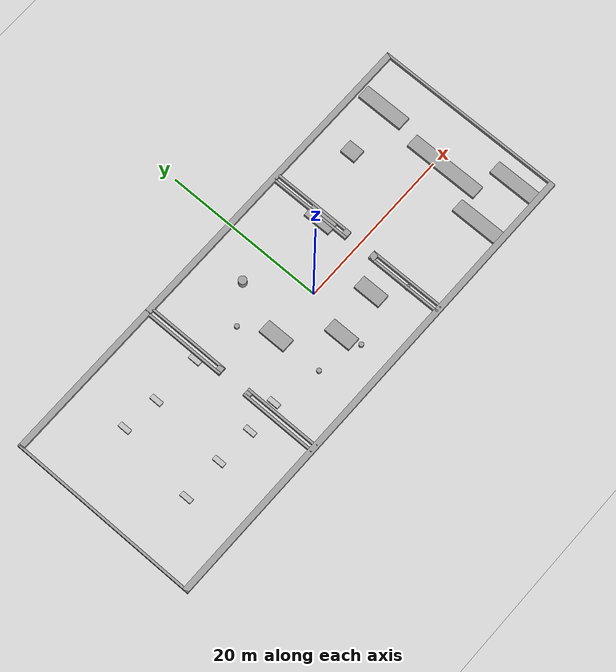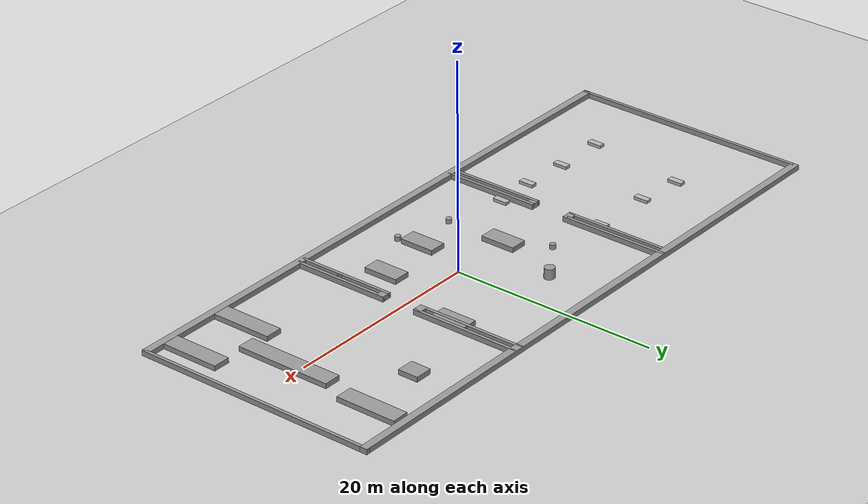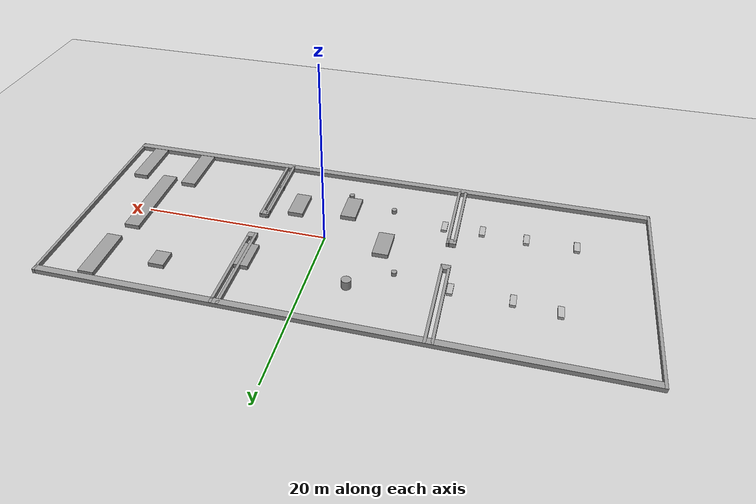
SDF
<sdf version='1.6'>
  <world name='default'>
    <light name='sun' type='directional'>
      <cast_shadows>1</cast_shadows>
      <pose frame=''>0 0 10 0 -0 0</pose>
      <diffuse>0.8 0.8 0.8 1</diffuse>
      <specular>0.2 0.2 0.2 1</specular>
      <attenuation>
        <range>1000</range>
        <constant>0.9</constant>
        <linear>0.01</linear>
        <quadratic>0.001</quadratic>
      </attenuation>
      <direction>-0.5 0.1 -0.9</direction>
    </light>
    <model name='ground_plane'>
      <static>1</static>
      <link name='link'>
        <collision name='collision'>
          <geometry>
            <plane>
              <normal>0 0 1</normal>
              <size>480 480</size>
            </plane>
          </geometry>
          <surface>
            <friction>
              <ode>
                <mu>100</mu>
                <mu2>50</mu2>
              </ode>
              <torsional>
                <ode/>
              </torsional>
            </friction>
            <contact>
              <ode/>
            </contact>
            <bounce/>
          </surface>
          <max_contacts>10</max_contacts>
        </collision>
        <visual name='visual'>
          <cast_shadows>0</cast_shadows>
          <geometry>
            <plane>
              <normal>0 0 1</normal>
              <size>480 480</size>
            </plane>
          </geometry>
          <material>
            <script>
              <uri>file://media/materials/scripts/gazebo.material</uri>
              <name>Gazebo/Grey</name>
            </script>
          </material>
        </visual>
        <self_collide>0</self_collide>
        <enable_wind>0</enable_wind>
        <kinematic>0</kinematic>
      </link>
    </model>
    <gravity>0 0 -9.8</gravity>
    <magnetic_field>6e-06 2.3e-05 -4.2e-05</magnetic_field>
    <atmosphere type='adiabatic'/>
    <physics name='default_physics' default='0' type='ode'>
      <max_step_size>0.001</max_step_size>
      <real_time_factor>1</real_time_factor>
      <real_time_update_rate>1000</real_time_update_rate>
    </physics>
    <scene>
      <ambient>0.4 0.4 0.4 1</ambient>
      <background>0.7 0.7 0.7 1</background>
      <shadows>1</shadows>
    </scene>
    <audio>
      <device>default</device>
    </audio>
    <wind/>
    <spherical_coordinates>
      <surface_model>EARTH_WGS84</surface_model>
      <latitude_deg>0</latitude_deg>
      <longitude_deg>0</longitude_deg>
      <elevation>0</elevation>
      <heading_deg>0</heading_deg>
    </spherical_coordinates>
    <model name='exp_empty_rooms'>
      <pose frame=''>-3.32278 0.346109 0 0 -0 0</pose>
      <link name='Wall_0'>
        <collision name='Wall_0_Collision'>
          <geometry>
            <box>
              <size>24 0.3 0.5</size>
            </box>
          </geometry>
          <pose frame=''>0 0 0.25 0 -0 0</pose>
          <max_contacts>10</max_contacts>
          <surface>
            <contact>
              <ode/>
            </contact>
            <bounce/>
            <friction>
              <torsional>
                <ode/>
              </torsional>
              <ode/>
            </friction>
          </surface>
        </collision>
        <visual name='Wall_0_Visual'>
          <pose frame=''>0 0 0.25 0 -0 0</pose>
          <geometry>
            <box>
              <size>24 0.3 0.5</size>
            </box>
          </geometry>
          <material>
            <script>
              <uri>file://media/materials/scripts/gazebo.material</uri>
              <name>Gazebo/Grey</name>
            </script>
            <ambient>1 1 1 1</ambient>
          </material>
          <meta>
            <layer>0</layer>
          </meta>
        </visual>
        <pose frame=''>-29.85 0 0 0 -0 -1.5708</pose>
        <self_collide>0</self_collide>
        <enable_wind>0</enable_wind>
        <kinematic>0</kinematic>
      </link>
      <link name='Wall_1'>
        <collision name='Wall_1_Collision'>
          <geometry>
            <box>
              <size>60 0.72 0.5</size>
            </box>
          </geometry>
          <pose frame=''>0 0 0.25 0 -0 0</pose>
          <max_contacts>10</max_contacts>
          <surface>
            <contact>
              <ode/>
            </contact>
            <bounce/>
            <friction>
              <torsional>
                <ode/>
              </torsional>
              <ode/>
            </friction>
          </surface>
        </collision>
        <visual name='Wall_1_Visual'>
          <pose frame=''>0 0 0.25 0 -0 0</pose>
          <geometry>
            <box>
              <size>60 0.72 0.5</size>
            </box>
          </geometry>
          <material>
            <script>
              <uri>file://media/materials/scripts/gazebo.material</uri>
              <name>Gazebo/Grey</name>
            </script>
            <ambient>1 1 1 1</ambient>
          </material>
          <meta>
            <layer>0</layer>
          </meta>
        </visual>
        <pose frame=''>0 -11.64 0 0 -0 0</pose>
        <self_collide>0</self_collide>
        <enable_wind>0</enable_wind>
        <kinematic>0</kinematic>
      </link>
      <link name='Wall_10'>
        <collision name='Wall_10_Collision'>
          <geometry>
            <box>
              <size>10.8 0.3 0.5</size>
            </box>
          </geometry>
          <pose frame=''>0 0 0.25 0 -0 0</pose>
          <max_contacts>10</max_contacts>
          <surface>
            <contact>
              <ode/>
            </contact>
            <bounce/>
            <friction>
              <torsional>
                <ode/>
              </torsional>
              <ode/>
            </friction>
          </surface>
        </collision>
        <visual name='Wall_10_Visual'>
          <pose frame=''>0 0 0.25 0 -0 0</pose>
          <geometry>
            <box>
              <size>10.8 0.3 0.5</size>
            </box>
          </geometry>
          <material>
            <script>
              <uri>file://media/materials/scripts/gazebo.material</uri>
              <name>Gazebo/Grey</name>
            </script>
            <ambient>1 1 1 1</ambient>
          </material>
          <meta>
            <layer>0</layer>
          </meta>
        </visual>
        <pose frame=''>-10.11 6.6 0 0 -0 -1.5708</pose>
        <self_collide>0</self_collide>
        <enable_wind>0</enable_wind>
        <kinematic>0</kinematic>
      </link>
      <link name='Wall_11'>
        <collision name='Wall_11_Collision'>
          <geometry>
            <box>
              <size>1 0.72 0.5</size>
            </box>
          </geometry>
          <pose frame=''>0 0 0.25 0 -0 0</pose>
          <max_contacts>10</max_contacts>
          <surface>
            <contact>
              <ode/>
            </contact>
            <bounce/>
            <friction>
              <torsional>
                <ode/>
              </torsional>
              <ode/>
            </friction>
          </surface>
        </collision>
        <visual name='Wall_11_Visual'>
          <pose frame=''>0 0 0.25 0 -0 0</pose>
          <geometry>
            <box>
              <size>1 0.72 0.5</size>
            </box>
          </geometry>
          <material>
            <script>
              <uri>file://media/materials/scripts/gazebo.material</uri>
              <name>Gazebo/Grey</name>
            </script>
            <ambient>1 1 1 1</ambient>
          </material>
          <meta>
            <layer>0</layer>
          </meta>
        </visual>
        <pose frame=''>-9.76 1.56 0 0 -0 0</pose>
        <self_collide>0</self_collide>
        <enable_wind>0</enable_wind>
        <kinematic>0</kinematic>
      </link>
      <link name='Wall_12'>
        <collision name='Wall_12_Collision'>
          <geometry>
            <box>
              <size>10.8 0.3 0.5</size>
            </box>
          </geometry>
          <pose frame=''>0 0 0.25 0 -0 0</pose>
          <max_contacts>10</max_contacts>
          <surface>
            <contact>
              <ode/>
            </contact>
            <bounce/>
            <friction>
              <torsional>
                <ode/>
              </torsional>
              <ode/>
            </friction>
          </surface>
        </collision>
        <visual name='Wall_12_Visual'>
          <pose frame=''>0 0 0.25 0 -0 0</pose>
          <geometry>
            <box>
              <size>10.8 0.3 0.5</size>
            </box>
          </geometry>
          <material>
            <script>
              <uri>file://media/materials/scripts/gazebo.material</uri>
              <name>Gazebo/Grey</name>
            </script>
            <ambient>1 1 1 1</ambient>
          </material>
          <meta>
            <layer>0</layer>
          </meta>
        </visual>
        <pose frame=''>-9.41 6.6 0 0 -0 1.5708</pose>
        <self_collide>0</self_collide>
        <enable_wind>0</enable_wind>
        <kinematic>0</kinematic>
      </link>
      <link name='Wall_16'>
        <collision name='Wall_16_Collision'>
          <geometry>
            <box>
              <size>1 0.72 0.5</size>
            </box>
          </geometry>
          <pose frame=''>0 0 0.25 0 -0 0</pose>
          <max_contacts>10</max_contacts>
          <surface>
            <contact>
              <ode/>
            </contact>
            <bounce/>
            <friction>
              <torsional>
                <ode/>
              </torsional>
              <ode/>
            </friction>
          </surface>
        </collision>
        <visual name='Wall_16_Visual'>
          <pose frame=''>0 0 0.25 0 -0 0</pose>
          <geometry>
            <box>
              <size>1 0.72 0.5</size>
            </box>
          </geometry>
          <material>
            <script>
              <uri>file://media/materials/scripts/gazebo.material</uri>
              <name>Gazebo/Grey</name>
            </script>
            <ambient>1 1 1 1</ambient>
          </material>
          <meta>
            <layer>0</layer>
          </meta>
        </visual>
        <pose frame=''>-9.76 -2.52 0 0 -0 0</pose>
        <self_collide>0</self_collide>
        <enable_wind>0</enable_wind>
        <kinematic>0</kinematic>
      </link>
      <link name='Wall_17'>
        <collision name='Wall_17_Collision'>
          <geometry>
            <box>
              <size>9.6 0.3 0.5</size>
            </box>
          </geometry>
          <pose frame=''>0 0 0.25 0 -0 0</pose>
          <max_contacts>10</max_contacts>
          <surface>
            <contact>
              <ode/>
            </contact>
            <bounce/>
            <friction>
              <torsional>
                <ode/>
              </torsional>
              <ode/>
            </friction>
          </surface>
        </collision>
        <visual name='Wall_17_Visual'>
          <pose frame=''>0 0 0.25 0 -0 0</pose>
          <geometry>
            <box>
              <size>9.6 0.3 0.5</size>
            </box>
          </geometry>
          <material>
            <script>
              <uri>file://media/materials/scripts/gazebo.material</uri>
              <name>Gazebo/Grey</name>
            </script>
            <ambient>1 1 1 1</ambient>
          </material>
          <meta>
            <layer>0</layer>
          </meta>
        </visual>
        <pose frame=''>-9.41 -6.96 0 0 -0 -1.5708</pose>
        <self_collide>0</self_collide>
        <enable_wind>0</enable_wind>
        <kinematic>0</kinematic>
      </link>
      <link name='Wall_19'>
        <collision name='Wall_19_Collision'>
          <geometry>
            <box>
              <size>9.6 0.3 0.5</size>
            </box>
          </geometry>
          <pose frame=''>0 0 0.25 0 -0 0</pose>
          <max_contacts>10</max_contacts>
          <surface>
            <contact>
              <ode/>
            </contact>
            <bounce/>
            <friction>
              <torsional>
                <ode/>
              </torsional>
              <ode/>
            </friction>
          </surface>
        </collision>
        <visual name='Wall_19_Visual'>
          <pose frame=''>0 0 0.25 0 -0 0</pose>
          <geometry>
            <box>
              <size>9.6 0.3 0.5</size>
            </box>
          </geometry>
          <material>
            <script>
              <uri>file://media/materials/scripts/gazebo.material</uri>
              <name>Gazebo/Grey</name>
            </script>
            <ambient>1 1 1 1</ambient>
          </material>
          <meta>
            <layer>0</layer>
          </meta>
        </visual>
        <pose frame=''>-10.11 -6.96 0 0 -0 -1.5708</pose>
        <self_collide>0</self_collide>
        <enable_wind>0</enable_wind>
        <kinematic>0</kinematic>
      </link>
      <link name='Wall_2'>
        <collision name='Wall_2_Collision'>
          <geometry>
            <box>
              <size>24 0.3 0.5</size>
            </box>
          </geometry>
          <pose frame=''>0 0 0.25 0 -0 0</pose>
          <max_contacts>10</max_contacts>
          <surface>
            <contact>
              <ode/>
            </contact>
            <bounce/>
            <friction>
              <torsional>
                <ode/>
              </torsional>
              <ode/>
            </friction>
          </surface>
        </collision>
        <visual name='Wall_2_Visual'>
          <pose frame=''>0 0 0.25 0 -0 0</pose>
          <geometry>
            <box>
              <size>24 0.3 0.5</size>
            </box>
          </geometry>
          <material>
            <script>
              <uri>file://media/materials/scripts/gazebo.material</uri>
              <name>Gazebo/Grey</name>
            </script>
            <ambient>1 1 1 1</ambient>
          </material>
          <meta>
            <layer>0</layer>
          </meta>
        </visual>
        <pose frame=''>29.85 0 0 0 -0 1.5708</pose>
        <self_collide>0</self_collide>
        <enable_wind>0</enable_wind>
        <kinematic>0</kinematic>
      </link>
      <link name='Wall_3'>
        <collision name='Wall_3_Collision'>
          <geometry>
            <box>
              <size>60 0.72 0.5</size>
            </box>
          </geometry>
          <pose frame=''>0 0 0.25 0 -0 0</pose>
          <max_contacts>10</max_contacts>
          <surface>
            <contact>
              <ode/>
            </contact>
            <bounce/>
            <friction>
              <torsional>
                <ode/>
              </torsional>
              <ode/>
            </friction>
          </surface>
        </collision>
        <visual name='Wall_3_Visual'>
          <pose frame=''>0 0 0.25 0 -0 0</pose>
          <geometry>
            <box>
              <size>60 0.72 0.5</size>
            </box>
          </geometry>
          <material>
            <script>
              <uri>file://media/materials/scripts/gazebo.material</uri>
              <name>Gazebo/Grey</name>
            </script>
            <ambient>1 1 1 1</ambient>
          </material>
          <meta>
            <layer>0</layer>
          </meta>
        </visual>
        <pose frame=''>0 11.64 0 0 -0 3.14159</pose>
        <self_collide>0</self_collide>
        <enable_wind>0</enable_wind>
        <kinematic>0</kinematic>
      </link>
      <link name='Wall_38'>
        <collision name='Wall_38_Collision'>
          <geometry>
            <box>
              <size>9.6 0.3 0.5</size>
            </box>
          </geometry>
          <pose frame=''>0 0 0.25 0 -0 0</pose>
          <max_contacts>10</max_contacts>
          <surface>
            <contact>
              <ode/>
            </contact>
            <bounce/>
            <friction>
              <torsional>
                <ode/>
              </torsional>
              <ode/>
            </friction>
          </surface>
        </collision>
        <visual name='Wall_38_Visual'>
          <pose frame=''>0 0 0.25 0 -0 0</pose>
          <geometry>
            <box>
              <size>9.6 0.3 0.5</size>
            </box>
          </geometry>
          <material>
            <script>
              <uri>file://media/materials/scripts/gazebo.material</uri>
              <name>Gazebo/Grey</name>
            </script>
            <ambient>1 1 1 1</ambient>
          </material>
          <meta>
            <layer>0</layer>
          </meta>
        </visual>
        <pose frame=''>10.37 -6.912 0 0 -0 -1.5708</pose>
        <self_collide>0</self_collide>
        <enable_wind>0</enable_wind>
        <kinematic>0</kinematic>
      </link>
      <link name='Wall_43'>
        <collision name='Wall_43_Collision'>
          <geometry>
            <box>
              <size>1 0.72 0.5</size>
            </box>
          </geometry>
          <pose frame=''>0 0 0.25 0 -0 0</pose>
          <max_contacts>10</max_contacts>
          <surface>
            <contact>
              <ode/>
            </contact>
            <bounce/>
            <friction>
              <torsional>
                <ode/>
              </torsional>
              <ode/>
            </friction>
          </surface>
        </collision>
        <visual name='Wall_43_Visual'>
          <pose frame=''>0 0 0.25 0 -0 0</pose>
          <geometry>
            <box>
              <size>1 0.72 0.5</size>
            </box>
          </geometry>
          <material>
            <script>
              <uri>file://media/materials/scripts/gazebo.material</uri>
              <name>Gazebo/Grey</name>
            </script>
            <ambient>1 1 1 1</ambient>
          </material>
          <meta>
            <layer>0</layer>
          </meta>
        </visual>
        <pose frame=''>10.72 -2.472 0 0 -0 0</pose>
        <self_collide>0</self_collide>
        <enable_wind>0</enable_wind>
        <kinematic>0</kinematic>
      </link>
      <link name='Wall_44'>
        <collision name='Wall_44_Collision'>
          <geometry>
            <box>
              <size>9.6 0.3 0.5</size>
            </box>
          </geometry>
          <pose frame=''>0 0 0.25 0 -0 0</pose>
          <max_contacts>10</max_contacts>
          <surface>
            <contact>
              <ode/>
            </contact>
            <bounce/>
            <friction>
              <torsional>
                <ode/>
              </torsional>
              <ode/>
            </friction>
          </surface>
        </collision>
        <visual name='Wall_44_Visual'>
          <pose frame=''>0 0 0.25 0 -0 0</pose>
          <geometry>
            <box>
              <size>9.6 0.3 0.5</size>
            </box>
          </geometry>
          <material>
            <script>
              <uri>file://media/materials/scripts/gazebo.material</uri>
              <name>Gazebo/Grey</name>
            </script>
            <ambient>1 1 1 1</ambient>
          </material>
          <meta>
            <layer>0</layer>
          </meta>
        </visual>
        <pose frame=''>11.07 -6.912 0 0 -0 -1.5708</pose>
        <self_collide>0</self_collide>
        <enable_wind>0</enable_wind>
        <kinematic>0</kinematic>
      </link>
      <link name='Wall_47'>
        <collision name='Wall_47_Collision'>
          <geometry>
            <box>
              <size>10.8 0.3 0.5</size>
            </box>
          </geometry>
          <pose frame=''>0 0 0.25 0 -0 0</pose>
          <max_contacts>10</max_contacts>
          <surface>
            <contact>
              <ode/>
            </contact>
            <bounce/>
            <friction>
              <torsional>
                <ode/>
              </torsional>
              <ode/>
            </friction>
          </surface>
        </collision>
        <visual name='Wall_47_Visual'>
          <pose frame=''>0 0 0.25 0 -0 0</pose>
          <geometry>
            <box>
              <size>10.8 0.3 0.5</size>
            </box>
          </geometry>
          <material>
            <script>
              <uri>file://media/materials/scripts/gazebo.material</uri>
              <name>Gazebo/Grey</name>
            </script>
            <ambient>1 1 1 1</ambient>
          </material>
          <meta>
            <layer>0</layer>
          </meta>
        </visual>
        <pose frame=''>10.35 6.552 0 0 -0 1.5708</pose>
        <self_collide>0</self_collide>
        <enable_wind>0</enable_wind>
        <kinematic>0</kinematic>
      </link>
      <link name='Wall_49'>
        <collision name='Wall_49_Collision'>
          <geometry>
            <box>
              <size>1 0.72 0.5</size>
            </box>
          </geometry>
          <pose frame=''>0 0 0.25 0 -0 0</pose>
          <max_contacts>10</max_contacts>
          <surface>
            <contact>
              <ode/>
            </contact>
            <bounce/>
            <friction>
              <torsional>
                <ode/>
              </torsional>
              <ode/>
            </friction>
          </surface>
        </collision>
        <visual name='Wall_49_Visual'>
          <pose frame=''>0 0 0.25 0 -0 0</pose>
          <geometry>
            <box>
              <size>1 0.72 0.5</size>
            </box>
          </geometry>
          <material>
            <script>
              <uri>file://media/materials/scripts/gazebo.material</uri>
              <name>Gazebo/Grey</name>
            </script>
            <ambient>1 1 1 1</ambient>
          </material>
          <meta>
            <layer>0</layer>
          </meta>
        </visual>
        <pose frame=''>10.7 1.512 0 0 -0 0</pose>
        <self_collide>0</self_collide>
        <enable_wind>0</enable_wind>
        <kinematic>0</kinematic>
      </link>
      <link name='Wall_51'>
        <collision name='Wall_51_Collision'>
          <geometry>
            <box>
              <size>10.8 0.3 0.5</size>
            </box>
          </geometry>
          <pose frame=''>0 0 0.25 0 -0 0</pose>
          <max_contacts>10</max_contacts>
          <surface>
            <contact>
              <ode/>
            </contact>
            <bounce/>
            <friction>
              <torsional>
                <ode/>
              </torsional>
              <ode/>
            </friction>
          </surface>
        </collision>
        <visual name='Wall_51_Visual'>
          <pose frame=''>0 0 0.25 0 -0 0</pose>
          <geometry>
            <box>
              <size>10.8 0.3 0.5</size>
            </box>
          </geometry>
          <material>
            <script>
              <uri>file://media/materials/scripts/gazebo.material</uri>
              <name>Gazebo/Grey</name>
            </script>
            <ambient>1 1 1 1</ambient>
          </material>
          <meta>
            <layer>0</layer>
          </meta>
        </visual>
        <pose frame=''>11.05 6.552 0 0 -0 1.5708</pose>
        <self_collide>0</self_collide>
        <enable_wind>0</enable_wind>
        <kinematic>0</kinematic>
      </link>
      <static>1</static>
    </model>
    <model name='unit_box_clone'>
      <pose frame=''>-6.3061 -0.137011 0.243066 0 -0 0</pose>
      <link name='link'>
        <inertial>
          <mass>1</mass>
          <inertia>
            <ixx>0.166667</ixx>
            <ixy>0</ixy>
            <ixz>0</ixz>
            <iyy>0.166667</iyy>
            <iyz>0</iyz>
            <izz>0.166667</izz>
          </inertia>
        </inertial>
        <collision name='collision'>
          <geometry>
            <box>
              <size>1.66509 3.41848 0.486131</size>
            </box>
          </geometry>
          <max_contacts>10</max_contacts>
          <surface>
            <contact>
              <ode/>
            </contact>
            <bounce/>
            <friction>
              <torsional>
                <ode/>
              </torsional>
              <ode/>
            </friction>
          </surface>
        </collision>
        <visual name='visual'>
          <geometry>
            <box>
              <size>1.66509 3.41848 0.486131</size>
            </box>
          </geometry>
          <material>
            <script>
              <name>Gazebo/Grey</name>
              <uri>file://media/materials/scripts/gazebo.material</uri>
            </script>
          </material>
        </visual>
        <self_collide>0</self_collide>
        <enable_wind>0</enable_wind>
        <kinematic>0</kinematic>
      </link>
    </model>
    <model name='unit_box_clone_clone'>
      <pose frame=''>-1.60181 -5.2957 0.243066 0 -0 0</pose>
      <link name='link'>
        <inertial>
          <mass>1</mass>
          <inertia>
            <ixx>0.166667</ixx>
            <ixy>0</ixy>
            <ixz>0</ixz>
            <iyy>0.166667</iyy>
            <iyz>0</iyz>
            <izz>0.166667</izz>
          </inertia>
        </inertial>
        <collision name='collision'>
          <geometry>
            <box>
              <size>1.66509 3.41848 0.486131</size>
            </box>
          </geometry>
          <max_contacts>10</max_contacts>
          <surface>
            <contact>
              <ode/>
            </contact>
            <bounce/>
            <friction>
              <torsional>
                <ode/>
              </torsional>
              <ode/>
            </friction>
          </surface>
        </collision>
        <visual name='visual'>
          <geometry>
            <box>
              <size>1.66509 3.41848 0.486131</size>
            </box>
          </geometry>
          <material>
            <script>
              <name>Gazebo/Grey</name>
              <uri>file://media/materials/scripts/gazebo.material</uri>
            </script>
          </material>
        </visual>
        <self_collide>0</self_collide>
        <enable_wind>0</enable_wind>
        <kinematic>0</kinematic>
      </link>
    </model>
    <model name='unit_box_clone_clone_1'>
      <pose frame=''>4.15108 -4.52149 0.243066 0 -0 0</pose>
      <link name='link'>
        <inertial>
          <mass>1</mass>
          <inertia>
            <ixx>0.166667</ixx>
            <ixy>0</ixy>
            <ixz>0</ixz>
            <iyy>0.166667</iyy>
            <iyz>0</iyz>
            <izz>0.166667</izz>
          </inertia>
        </inertial>
        <collision name='collision'>
          <geometry>
            <box>
              <size>1.66509 3.41848 0.486131</size>
            </box>
          </geometry>
          <max_contacts>10</max_contacts>
          <surface>
            <contact>
              <ode/>
            </contact>
            <bounce/>
            <friction>
              <torsional>
                <ode/>
              </torsional>
              <ode/>
            </friction>
          </surface>
        </collision>
        <visual name='visual'>
          <geometry>
            <box>
              <size>1.66509 3.41848 0.486131</size>
            </box>
          </geometry>
          <material>
            <script>
              <name>Gazebo/Grey</name>
              <uri>file://media/materials/scripts/gazebo.material</uri>
            </script>
          </material>
        </visual>
        <self_collide>0</self_collide>
        <enable_wind>0</enable_wind>
        <kinematic>0</kinematic>
      </link>
    </model>
    <model name='unit_box_clone_clone_2'>
      <pose frame=''>6.90728 4.9729 0.243066 0 -0 0</pose>
      <link name='link'>
        <inertial>
          <mass>1</mass>
          <inertia>
            <ixx>0.166667</ixx>
            <ixy>0</ixy>
            <ixz>0</ixz>
            <iyy>0.166667</iyy>
            <iyz>0</iyz>
            <izz>0.166667</izz>
          </inertia>
        </inertial>
        <collision name='collision'>
          <geometry>
            <box>
              <size>1.66509 3.41848 0.486131</size>
            </box>
          </geometry>
          <max_contacts>10</max_contacts>
          <surface>
            <contact>
              <ode/>
            </contact>
            <bounce/>
            <friction>
              <torsional>
                <ode/>
              </torsional>
              <ode/>
            </friction>
          </surface>
        </collision>
        <visual name='visual'>
          <geometry>
            <box>
              <size>1.66509 3.41848 0.486131</size>
            </box>
          </geometry>
          <material>
            <script>
              <name>Gazebo/Grey</name>
              <uri>file://media/materials/scripts/gazebo.material</uri>
            </script>
          </material>
        </visual>
        <self_collide>0</self_collide>
        <enable_wind>0</enable_wind>
        <kinematic>0</kinematic>
      </link>
    </model>
    <model name='unit_box_clone_clone_2_clone'>
      <pose frame=''>15.1405 7.61443 0.243066 0 -0 0</pose>
      <link name='link'>
        <inertial>
          <mass>1</mass>
          <inertia>
            <ixx>0.166667</ixx>
            <ixy>0</ixy>
            <ixz>0</ixz>
            <iyy>0.166667</iyy>
            <iyz>0</iyz>
            <izz>0.166667</izz>
          </inertia>
        </inertial>
        <collision name='collision'>
          <geometry>
            <box>
              <size>1.66509 1.97995 0.486131</size>
            </box>
          </geometry>
          <max_contacts>10</max_contacts>
          <surface>
            <contact>
              <ode/>
            </contact>
            <bounce/>
            <friction>
              <torsional>
                <ode/>
              </torsional>
              <ode/>
            </friction>
          </surface>
        </collision>
        <visual name='visual'>
          <geometry>
            <box>
              <size>1.66509 1.97995 0.486131</size>
            </box>
          </geometry>
          <material>
            <script>
              <name>Gazebo/Grey</name>
              <uri>file://media/materials/scripts/gazebo.material</uri>
            </script>
          </material>
        </visual>
        <self_collide>0</self_collide>
        <enable_wind>0</enable_wind>
        <kinematic>0</kinematic>
      </link>
    </model>
    <model name='unit_box_clone_clone_2_clone_clone'>
      <pose frame=''>17.8679 -8.0485 0.243066 0 -0 -3e-06</pose>
      <link name='link'>
        <inertial>
          <mass>1</mass>
          <inertia>
            <ixx>0.166667</ixx>
            <ixy>0</ixy>
            <ixz>0</ixz>
            <iyy>0.166667</iyy>
            <iyz>0</iyz>
            <izz>0.166667</izz>
          </inertia>
        </inertial>
        <collision name='collision'>
          <geometry>
            <box>
              <size>1.66509 5.90213 0.486131</size>
            </box>
          </geometry>
          <max_contacts>10</max_contacts>
          <surface>
            <contact>
              <ode/>
            </contact>
            <bounce/>
            <friction>
              <torsional>
                <ode/>
              </torsional>
              <ode/>
            </friction>
          </surface>
        </collision>
        <visual name='visual'>
          <geometry>
            <box>
              <size>1.66509 5.90213 0.486131</size>
            </box>
          </geometry>
          <material>
            <script>
              <name>Gazebo/Grey</name>
              <uri>file://media/materials/scripts/gazebo.material</uri>
            </script>
          </material>
        </visual>
        <self_collide>0</self_collide>
        <enable_wind>0</enable_wind>
        <kinematic>0</kinematic>
      </link>
    </model>
    <model name='unit_box_clone_clone_2_clone_clone_clone'>
      <pose frame=''>21.3716 8.37197 0.243066 0 0 -3e-06</pose>
      <link name='link'>
        <inertial>
          <mass>1</mass>
          <inertia>
            <ixx>0.166667</ixx>
            <ixy>0</ixy>
            <ixz>0</ixz>
            <iyy>0.166667</iyy>
            <iyz>0</iyz>
            <izz>0.166667</izz>
          </inertia>
        </inertial>
        <collision name='collision'>
          <geometry>
            <box>
              <size>1.66509 5.90213 0.486131</size>
            </box>
          </geometry>
          <max_contacts>10</max_contacts>
          <surface>
            <contact>
              <ode/>
            </contact>
            <bounce/>
            <friction>
              <torsional>
                <ode/>
              </torsional>
              <ode/>
            </friction>
          </surface>
        </collision>
        <visual name='visual'>
          <geometry>
            <box>
              <size>1.66509 5.90213 0.486131</size>
            </box>
          </geometry>
          <material>
            <script>
              <name>Gazebo/Grey</name>
              <uri>file://media/materials/scripts/gazebo.material</uri>
            </script>
          </material>
        </visual>
        <self_collide>0</self_collide>
        <enable_wind>0</enable_wind>
        <kinematic>0</kinematic>
      </link>
    </model>
    <model name='unit_box_clone_clone_2_clone_clone_clone_0'>
      <pose frame=''>23.9706 -8.27405 0.243066 0 0 -3e-06</pose>
      <link name='link'>
        <inertial>
          <mass>1</mass>
          <inertia>
            <ixx>0.166667</ixx>
            <ixy>0</ixy>
            <ixz>0</ixz>
            <iyy>0.166667</iyy>
            <iyz>0</iyz>
            <izz>0.166667</izz>
          </inertia>
        </inertial>
        <collision name='collision'>
          <geometry>
            <box>
              <size>1.66509 5.90213 0.486131</size>
            </box>
          </geometry>
          <max_contacts>10</max_contacts>
          <surface>
            <contact>
              <ode/>
            </contact>
            <bounce/>
            <friction>
              <torsional>
                <ode/>
              </torsional>
              <ode/>
            </friction>
          </surface>
        </collision>
        <visual name='visual'>
          <geometry>
            <box>
              <size>1.66509 5.90213 0.486131</size>
            </box>
          </geometry>
          <material>
            <script>
              <name>Gazebo/Grey</name>
              <uri>file://media/materials/scripts/gazebo.material</uri>
            </script>
          </material>
        </visual>
        <self_collide>0</self_collide>
        <enable_wind>0</enable_wind>
        <kinematic>0</kinematic>
      </link>
    </model>
    <model name='unit_box_clone_clone_2_clone_clone_clone_1'>
      <pose frame=''>20.4514 -1.19933 0.243066 0 0 -3e-06</pose>
      <link name='link'>
        <inertial>
          <mass>1</mass>
          <inertia>
            <ixx>0.166667</ixx>
            <ixy>0</ixy>
            <ixz>0</ixz>
            <iyy>0.166667</iyy>
            <iyz>0</iyz>
            <izz>0.166667</izz>
          </inertia>
        </inertial>
        <collision name='collision'>
          <geometry>
            <box>
              <size>1.66509 9.38059 0.486131</size>
            </box>
          </geometry>
          <max_contacts>10</max_contacts>
          <surface>
            <contact>
              <ode/>
            </contact>
            <bounce/>
            <friction>
              <torsional>
                <ode/>
              </torsional>
              <ode/>
            </friction>
          </surface>
        </collision>
        <visual name='visual'>
          <geometry>
            <box>
              <size>1.66509 9.38059 0.486131</size>
            </box>
          </geometry>
          <material>
            <script>
              <name>Gazebo/Grey</name>
              <uri>file://media/materials/scripts/gazebo.material</uri>
            </script>
          </material>
        </visual>
        <self_collide>0</self_collide>
        <enable_wind>0</enable_wind>
        <kinematic>0</kinematic>
      </link>
    </model>

    <gui fullscreen='0'>
      <camera name='user_camera'>
        <pose frame=''>0.896642 3.88301 15.707 0 1.0618 3.10019</pose>
        <view_controller>orbit</view_controller>
        <projection_type>perspective</projection_type>
      </camera>
    </gui>
    <model name='unit_cylinder'>
      <pose frame=''>-4.08946 6.59976 0.5 0 -0 0</pose>
      <link name='link'>
        <inertial>
          <mass>1</mass>
          <inertia>
            <ixx>0.145833</ixx>
            <ixy>0</ixy>
            <ixz>0</ixz>
            <iyy>0.145833</iyy>
            <iyz>0</iyz>
            <izz>0.125</izz>
          </inertia>
        </inertial>
        <collision name='collision'>
          <geometry>
            <cylinder>
              <radius>0.499999</radius>
              <length>1</length>
            </cylinder>
          </geometry>
          <max_contacts>10</max_contacts>
          <surface>
            <contact>
              <ode/>
            </contact>
            <bounce/>
            <friction>
              <torsional>
                <ode/>
              </torsional>
              <ode/>
            </friction>
          </surface>
        </collision>
        <visual name='visual'>
          <geometry>
            <cylinder>
              <radius>0.499999</radius>
              <length>1</length>
            </cylinder>
          </geometry>
          <material>
            <script>
              <name>Gazebo/Grey</name>
              <uri>file://media/materials/scripts/gazebo.material</uri>
            </script>
          </material>
        </visual>
        <self_collide>0</self_collide>
        <enable_wind>0</enable_wind>
        <kinematic>0</kinematic>
      </link>
    </model>
    <model name='unit_cylinder_clone'>
      <pose frame=''>-6.22348 -6.10858 0.222892 0 -0 0</pose>
      <link name='link'>
        <inertial>
          <mass>1</mass>
          <inertia>
            <ixx>0.145833</ixx>
            <ixy>0</ixy>
            <ixz>0</ixz>
            <iyy>0.145833</iyy>
            <iyz>0</iyz>
            <izz>0.125</izz>
          </inertia>
        </inertial>
        <collision name='collision'>
          <geometry>
            <cylinder>
              <radius>0.278354</radius>
              <length>0.445785</length>
            </cylinder>
          </geometry>
          <max_contacts>10</max_contacts>
          <surface>
            <contact>
              <ode/>
            </contact>
            <bounce/>
            <friction>
              <torsional>
                <ode/>
              </torsional>
              <ode/>
            </friction>
          </surface>
        </collision>
        <visual name='visual'>
          <geometry>
            <cylinder>
              <radius>0.278354</radius>
              <length>0.445785</length>
            </cylinder>
          </geometry>
          <material>
            <script>
              <name>Gazebo/Grey</name>
              <uri>file://media/materials/scripts/gazebo.material</uri>
            </script>
          </material>
        </visual>
        <self_collide>0</self_collide>
        <enable_wind>0</enable_wind>
        <kinematic>0</kinematic>
      </link>
    </model>
    <model name='unit_cylinder_clone_0'>
      <pose frame=''>7.10898 -7.14773 0.22289 2e-06 2e-06 0</pose>
      <link name='link'>
        <inertial>
          <mass>1</mass>
          <inertia>
            <ixx>0.145833</ixx>
            <ixy>0</ixy>
            <ixz>0</ixz>
            <iyy>0.145833</iyy>
            <iyz>0</iyz>
            <izz>0.125</izz>
          </inertia>
        </inertial>
        <collision name='collision'>
          <geometry>
            <cylinder>
              <radius>0.278354</radius>
              <length>0.445785</length>
            </cylinder>
          </geometry>
          <max_contacts>10</max_contacts>
          <surface>
            <contact>
              <ode/>
            </contact>
            <bounce/>
            <friction>
              <torsional>
                <ode/>
              </torsional>
              <ode/>
            </friction>
          </surface>
        </collision>
        <visual name='visual'>
          <geometry>
            <cylinder>
              <radius>0.278354</radius>
              <length>0.445785</length>
            </cylinder>
          </geometry>
          <material>
            <script>
              <name>Gazebo/Grey</name>
              <uri>file://media/materials/scripts/gazebo.material</uri>
            </script>
          </material>
        </visual>
        <self_collide>0</self_collide>
        <enable_wind>0</enable_wind>
        <kinematic>0</kinematic>
      </link>
    </model>
    <model name='unit_cylinder_clone_0_clone'>
      <pose frame=''>-1.05274 -7.59245 0.222885 -2e-06 -2e-06 0</pose>
      <link name='link'>
        <inertial>
          <mass>1</mass>
          <inertia>
            <ixx>0.145833</ixx>
            <ixy>0</ixy>
            <ixz>0</ixz>
            <iyy>0.145833</iyy>
            <iyz>0</iyz>
            <izz>0.125</izz>
          </inertia>
        </inertial>
        <collision name='collision'>
          <geometry>
            <cylinder>
              <radius>0.278354</radius>
              <length>0.445785</length>
            </cylinder>
          </geometry>
          <max_contacts>10</max_contacts>
          <surface>
            <contact>
              <ode/>
            </contact>
            <bounce/>
            <friction>
              <torsional>
                <ode/>
              </torsional>
              <ode/>
            </friction>
          </surface>
        </collision>
        <visual name='visual'>
          <geometry>
            <cylinder>
              <radius>0.278354</radius>
              <length>0.445785</length>
            </cylinder>
          </geometry>
          <material>
            <script>
              <name>Gazebo/Grey</name>
              <uri>file://media/materials/scripts/gazebo.material</uri>
            </script>
          </material>
        </visual>
        <self_collide>0</self_collide>
        <enable_wind>0</enable_wind>
        <kinematic>0</kinematic>
      </link>
    </model>
    <model name='unit_cylinder_clone_1'>
      <pose frame=''>-8.24054 3.76908 0.22289 2e-06 2e-06 0</pose>
      <link name='link'>
        <inertial>
          <mass>1</mass>
          <inertia>
            <ixx>0.145833</ixx>
            <ixy>0</ixy>
            <ixz>0</ixz>
            <iyy>0.145833</iyy>
            <iyz>0</iyz>
            <izz>0.125</izz>
          </inertia>
        </inertial>
        <collision name='collision'>
          <geometry>
            <cylinder>
              <radius>0.278354</radius>
              <length>0.445785</length>
            </cylinder>
          </geometry>
          <max_contacts>10</max_contacts>
          <surface>
            <contact>
              <ode/>
            </contact>
            <bounce/>
            <friction>
              <torsional>
                <ode/>
              </torsional>
              <ode/>
            </friction>
          </surface>
        </collision>
        <visual name='visual'>
          <geometry>
            <cylinder>
              <radius>0.278354</radius>
              <length>0.445785</length>
            </cylinder>
          </geometry>
          <material>
            <script>
              <name>Gazebo/Grey</name>
              <uri>file://media/materials/scripts/gazebo.material</uri>
            </script>
          </material>
        </visual>
        <self_collide>0</self_collide>
        <enable_wind>0</enable_wind>
        <kinematic>0</kinematic>
      </link>
    </model>
    <model name='DynamicObstacle'>
      <pose frame=''>-16.0102 -4.98014 0.15 0 -0 0</pose>
      <link name='link'>
        <gravity>1</gravity>
        <inertial>
          <inertia>
            <ixx>0.17</ixx>
            <ixy>0</ixy>
            <ixz>0</ixz>
            <iyy>0.17</iyy>
            <iyz>0</iyz>
            <izz>0.17</izz>
          </inertia>
          <mass>100</mass>
        </inertial>
        <kinematic>0</kinematic>
        <collision name='collision'>
          <max_contacts>0</max_contacts>
          <geometry>
            <box>
              <size>0.6 1.44 0.3</size>
            </box>
          </geometry>
          <surface>
            <friction>
              <ode>
                <mu>0</mu>
                <mu2>0</mu2>
              </ode>
              <torsional>
                <ode/>
              </torsional>
            </friction>
            <bounce>
              <restitution_coefficient>0</restitution_coefficient>
              <threshold>0</threshold>
            </bounce>
            <contact>
              <ode>
                <kp>2e+09</kp>
                <kd>1</kd>
                <max_vel>0.01</max_vel>
                <min_depth>0</min_depth>
              </ode>
            </contact>
          </surface>
        </collision>
        <visual name='visual'>
          <geometry>
            <box>
              <size>0.6 1.44 0.3</size>
            </box>
          </geometry>
        </visual>
        <self_collide>0</self_collide>
        <enable_wind>0</enable_wind>
      </link>
      <plugin name='random' filename='libRandomVelocityPlugin.so'>
        <link>link</link>
        <initial_velocity>0.5 0.0 0</initial_velocity>
        <velocity_factor>0.2</velocity_factor>
        <update_period>5</update_period>
        <min_z>-24</min_z>
        <max_z>0</max_z>
      </plugin>
    </model>
    <model name='DynamicObstacle_clone'>
      <pose frame=''>-19.9914 4.72224 0.15 0 -0 0</pose>
      <link name='link'>
        <gravity>1</gravity>
        <inertial>
          <inertia>
            <ixx>0.17</ixx>
            <ixy>0</ixy>
            <ixz>0</ixz>
            <iyy>0.17</iyy>
            <iyz>0</iyz>
            <izz>0.17</izz>
          </inertia>
          <mass>100</mass>
        </inertial>
        <kinematic>0</kinematic>
        <collision name='collision'>
          <max_contacts>0</max_contacts>
          <geometry>
            <box>
              <size>0.6 1.44 0.3</size>
            </box>
          </geometry>
          <surface>
            <friction>
              <ode>
                <mu>0</mu>
                <mu2>0</mu2>
              </ode>
              <torsional>
                <ode/>
              </torsional>
            </friction>
            <bounce>
              <restitution_coefficient>0</restitution_coefficient>
              <threshold>0</threshold>
            </bounce>
            <contact>
              <ode>
                <kp>2e+09</kp>
                <kd>1</kd>
                <max_vel>0.01</max_vel>
                <min_depth>0</min_depth>
              </ode>
            </contact>
          </surface>
        </collision>
        <visual name='visual'>
          <geometry>
            <box>
              <size>0.6 1.44 0.3</size>
            </box>
          </geometry>
        </visual>
        <self_collide>0</self_collide>
        <enable_wind>0</enable_wind>
      </link>
      <plugin name='random' filename='libRandomVelocityPlugin.so'>
        <link>link</link>
        <initial_velocity>0.5 0.0 0</initial_velocity>
        <velocity_factor>0.2</velocity_factor>
        <update_period>5</update_period>
        <min_z>-24</min_z>
        <max_z>0</max_z>
      </plugin>
    </model>
    <model name='DynamicObstacle_clone_clone'>
      <pose frame=''>-25.7828 -4.74765 0.15 0 -0 0</pose>
      <link name='link'>
        <gravity>1</gravity>
        <inertial>
          <inertia>
            <ixx>0.17</ixx>
            <ixy>0</ixy>
            <ixz>0</ixz>
            <iyy>0.17</iyy>
            <iyz>0</iyz>
            <izz>0.17</izz>
          </inertia>
          <mass>100</mass>
        </inertial>
        <kinematic>0</kinematic>
        <collision name='collision'>
          <max_contacts>0</max_contacts>
          <geometry>
            <box>
              <size>0.6 1.44 0.3</size>
            </box>
          </geometry>
          <surface>
            <friction>
              <ode>
                <mu>0</mu>
                <mu2>0</mu2>
              </ode>
              <torsional>
                <ode/>
              </torsional>
            </friction>
            <bounce>
              <restitution_coefficient>0</restitution_coefficient>
              <threshold>0</threshold>
            </bounce>
            <contact>
              <ode>
                <kp>2e+09</kp>
                <kd>1</kd>
                <max_vel>0.01</max_vel>
                <min_depth>0</min_depth>
              </ode>
            </contact>
          </surface>
        </collision>
        <visual name='visual'>
          <geometry>
            <box>
              <size>0.6 1.44 0.3</size>
            </box>
          </geometry>
        </visual>
        <self_collide>0</self_collide>
        <enable_wind>0</enable_wind>
      </link>
      <plugin name='random' filename='libRandomVelocityPlugin.so'>
        <link>link</link>
        <initial_velocity>0.5 0.0 0</initial_velocity>
        <velocity_factor>0.2</velocity_factor>
        <update_period>5</update_period>
        <min_z>-24</min_z>
        <max_z>0</max_z>
      </plugin>
    </model>
    <model name='DynamicObstacle_clone_clone_clone'>
      <pose frame=''>-24.4536 5.18794 0.15 0 -0 0</pose>
      <link name='link'>
        <gravity>1</gravity>
        <inertial>
          <inertia>
            <ixx>0.17</ixx>
            <ixy>0</ixy>
            <ixz>0</ixz>
            <iyy>0.17</iyy>
            <iyz>0</iyz>
            <izz>0.17</izz>
          </inertia>
          <mass>100</mass>
        </inertial>
        <kinematic>0</kinematic>
        <collision name='collision'>
          <max_contacts>0</max_contacts>
          <geometry>
            <box>
              <size>0.6 1.44 0.3</size>
            </box>
          </geometry>
          <surface>
            <friction>
              <ode>
                <mu>0</mu>
                <mu2>0</mu2>
              </ode>
              <torsional>
                <ode/>
              </torsional>
            </friction>
            <bounce>
              <restitution_coefficient>0</restitution_coefficient>
              <threshold>0</threshold>
            </bounce>
            <contact>
              <ode>
                <kp>2e+09</kp>
                <kd>1</kd>
                <max_vel>0.01</max_vel>
                <min_depth>0</min_depth>
              </ode>
            </contact>
          </surface>
        </collision>
        <visual name='visual'>
          <geometry>
            <box>
              <size>0.6 1.44 0.3</size>
            </box>
          </geometry>
        </visual>
        <self_collide>0</self_collide>
        <enable_wind>0</enable_wind>
      </link>
      <plugin name='random' filename='libRandomVelocityPlugin.so'>
        <link>link</link>
        <initial_velocity>0.5 0.0 0</initial_velocity>
        <velocity_factor>0.2</velocity_factor>
        <update_period>5</update_period>
        <min_z>-24</min_z>
        <max_z>0</max_z>
      </plugin>
    </model>
    <model name='DynamicObstacle_clone_clone_clone_clone'>
      <pose frame=''>-13.9517 4.64376 0.15 0 -0 0</pose>
      <link name='link'>
        <gravity>1</gravity>
        <inertial>
          <inertia>
            <ixx>0.17</ixx>
            <ixy>0</ixy>
            <ixz>0</ixz>
            <iyy>0.17</iyy>
            <iyz>0</iyz>
            <izz>0.17</izz>
          </inertia>
          <mass>100</mass>
        </inertial>
        <kinematic>0</kinematic>
        <collision name='collision'>
          <max_contacts>0</max_contacts>
          <geometry>
            <box>
              <size>0.6 1.44 0.3</size>
            </box>
          </geometry>
          <surface>
            <friction>
              <ode>
                <mu>0</mu>
                <mu2>0</mu2>
              </ode>
              <torsional>
                <ode/>
              </torsional>
            </friction>
            <bounce>
              <restitution_coefficient>0</restitution_coefficient>
              <threshold>0</threshold>
            </bounce>
            <contact>
              <ode>
                <kp>2e+09</kp>
                <kd>1</kd>
                <max_vel>0.01</max_vel>
                <min_depth>0</min_depth>
              </ode>
            </contact>
          </surface>
        </collision>
        <visual name='visual'>
          <geometry>
            <box>
              <size>0.6 1.44 0.3</size>
            </box>
          </geometry>
        </visual>
        <self_collide>0</self_collide>
        <enable_wind>0</enable_wind>
      </link>
      <plugin name='random' filename='libRandomVelocityPlugin.so'>
        <link>link</link>
        <initial_velocity>0.5 0.0 0</initial_velocity>
        <velocity_factor>0.2</velocity_factor>
        <update_period>5</update_period>
        <min_z>-24</min_z>
        <max_z>0</max_z>
      </plugin>
    </model>
    <model name='DynamicObstacle_clone_clone_clone_clone_clone'>
      <pose frame=''>-20.6346 -4.72032 0.15 0 -0 0</pose>
      <link name='link'>
        <gravity>1</gravity>
        <inertial>
          <inertia>
            <ixx>0.17</ixx>
            <ixy>0</ixy>
            <ixz>0</ixz>
            <iyy>0.17</iyy>
            <iyz>0</iyz>
            <izz>0.17</izz>
          </inertia>
          <mass>100</mass>
        </inertial>
        <kinematic>0</kinematic>
        <collision name='collision'>
          <max_contacts>0</max_contacts>
          <geometry>
            <box>
              <size>0.6 1.44 0.3</size>
            </box>
          </geometry>
          <surface>
            <friction>
              <ode>
                <mu>0</mu>
                <mu2>0</mu2>
              </ode>
              <torsional>
                <ode/>
              </torsional>
            </friction>
            <bounce>
              <restitution_coefficient>0</restitution_coefficient>
              <threshold>0</threshold>
            </bounce>
            <contact>
              <ode>
                <kp>2e+09</kp>
                <kd>1</kd>
                <max_vel>0.01</max_vel>
                <min_depth>0</min_depth>
              </ode>
            </contact>
          </surface>
        </collision>
        <visual name='visual'>
          <geometry>
            <box>
              <size>0.6 1.44 0.3</size>
            </box>
          </geometry>
        </visual>
        <self_collide>0</self_collide>
        <enable_wind>0</enable_wind>
      </link>
      <plugin name='random' filename='libRandomVelocityPlugin.so'>
        <link>link</link>
        <initial_velocity>0.5 0.0 0</initial_velocity>
        <velocity_factor>0.2</velocity_factor>
        <update_period>5</update_period>
        <min_z>-24</min_z>
        <max_z>0</max_z>
      </plugin>
    </model>
    <model name='DynamicObstacle_clone_clone_clone_clone_clone_clone'>
      <pose frame=''>-12.0062 -4.81354 0.15 0 -0 0</pose>
      <link name='link'>
        <gravity>1</gravity>
        <inertial>
          <inertia>
            <ixx>0.17</ixx>
            <ixy>0</ixy>
            <ixz>0</ixz>
            <iyy>0.17</iyy>
            <iyz>0</iyz>
            <izz>0.17</izz>
          </inertia>
          <mass>100</mass>
        </inertial>
        <kinematic>0</kinematic>
        <collision name='collision'>
          <max_contacts>0</max_contacts>
          <geometry>
            <box>
              <size>0.6 1.44 0.3</size>
            </box>
          </geometry>
          <surface>
            <friction>
              <ode>
                <mu>0</mu>
                <mu2>0</mu2>
              </ode>
              <torsional>
                <ode/>
              </torsional>
            </friction>
            <bounce>
              <restitution_coefficient>0</restitution_coefficient>
              <threshold>0</threshold>
            </bounce>
            <contact>
              <ode>
                <kp>2e+09</kp>
                <kd>1</kd>
                <max_vel>0.01</max_vel>
                <min_depth>0</min_depth>
              </ode>
            </contact>
          </surface>
        </collision>
        <visual name='visual'>
          <geometry>
            <box>
              <size>0.6 1.44 0.3</size>
            </box>
          </geometry>
        </visual>
        <self_collide>0</self_collide>
        <enable_wind>0</enable_wind>
      </link>
      <plugin name='random' filename='libRandomVelocityPlugin.so'>
        <link>link</link>
        <initial_velocity>0.5 0.0 0</initial_velocity>
        <velocity_factor>0.2</velocity_factor>
        <update_period>5</update_period>
        <min_z>-24</min_z>
        <max_z>0</max_z>
      </plugin>
    </model>
  </world>
</sdf>
